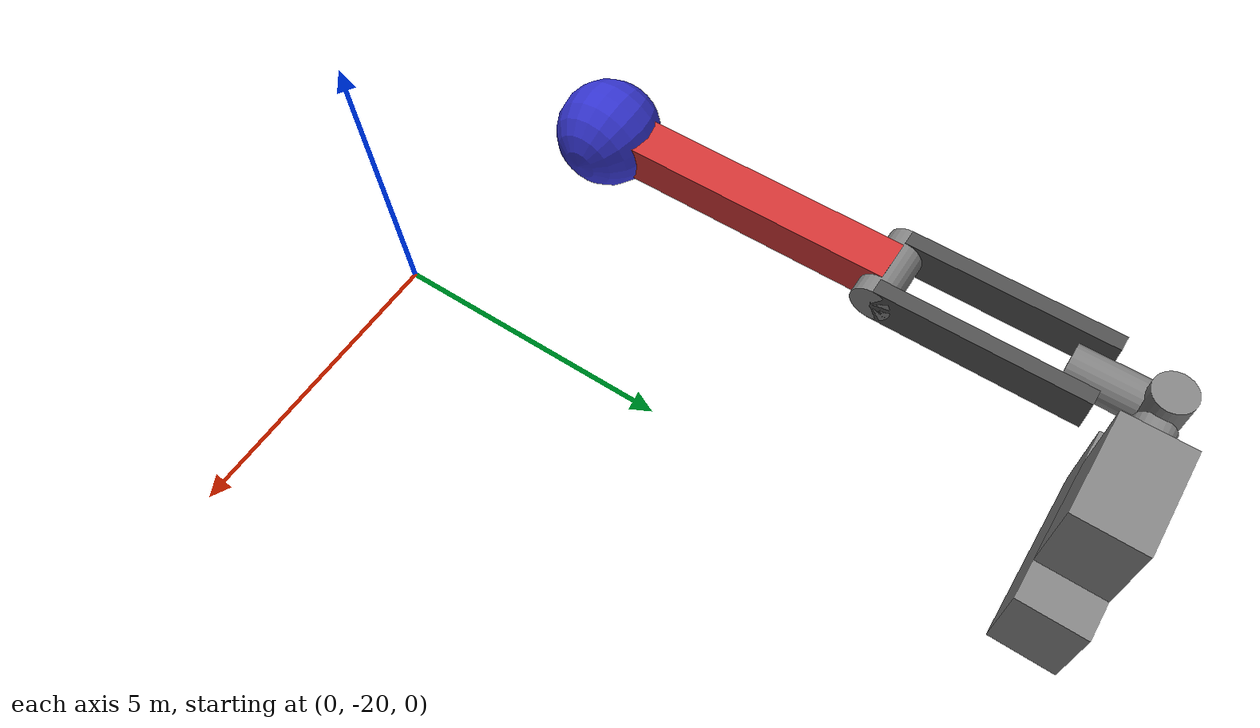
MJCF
<mujoco model="world_with_shapes">
    <compiler coordinate="local" angle="degree" inertiafromgeom="true"/>
    <size nuserdata="1000" nconmax="500" njmax="1000"/>
    <visual>
        <map fogstart="3" fogend="5" force="0.1" zfar="10"/>
        <quality shadowsize="2048"/>
    </visual>
    <asset>
        <!-- Define materials for visual appeal -->
        <material name="mat1" rgba="0.8 0.2 0.2 1"/>
        <material name="mat2" rgba="0.2 0.2 0.8 1"/>
        <material name="mat4" rgba="0.3 0.3 0.3 1"/>
        <material name="mat3" rgba="0.5 0.5 0.5 1"/>
        <material name="mat5" rgba="1.5 0.5 0.5 1"/>
    </asset>
    <worldbody>
        <body name="BOX" pos="-2.5 -8 0" euler="0 90 0">
            <geom type="box" size="1 0.65 1" material="mat3"/>
        </body>
        <body name="BO1X" pos="-2.5 -8 -2" euler="0 90 0">
            <geom type="box" size="1 0.65 1.75" material="mat3"/>
            <body name="cylinde11r" pos="-2 0 -1" euler="0 0 0">
                <geom type="cylinder" size="0.396 0.65" material="mat3"/>
                <inertial pos="0 0 0" mass="0.065"/>
                <joint/>
                <body name="cylinde121r" pos="0 0 -1" euler="0 90 0">
                    <geom type="cylinder" size="0.396 0.65" material="mat3"/>
                    <inertial pos="0 0 0" mass="0.065"/>
                    <joint/>
                     <body name="cylinde1r" pos="0 -1 0" euler="90 0 90">
                         <geom type="cylinder" size="0.396 0.65" material="mat3"/>
                         <inertial pos="0 0 0" mass="0.065"/>
                         <joint/>
                         <body name="rect_block1" pos="0 -0.6 2" euler="90 0 0">                <!-- Positioned at one end of the cylinder -->
                             <geom type="box" size="0.4 2 0.15" material="mat4"/>
                             <inertial pos="0 0 0" mass="0.02"/>
                         </body>
                         <body name="rect_block2" pos="0 0.6 2" euler="90 0 0">                <!-- Positioned at the other end of the cylinder -->
                             <geom type="box" size="0.4 2 0.15" material="mat4"/>
                             <inertial pos="0 0 0" mass="0.02"/>
                         </body>
                         <body name="cylinder" pos="0 0 4" euler="90 0 0">
                            <geom type="cylinder" size="0.396 0.75" material="mat3"/>
                             <inertial pos="0 0 0" mass="0.065"/>
                             <joint/>
                             <body name="rectangle" pos="0 3 0">
                                 <geom type="box" size="0.4 3 0.4" material="mat1"/>
                                 <body name="globe" pos="0 3 0">
                                     <geom type="sphere" size="1" material="mat2"/>
                                 </body>
                             </body>
                        </body>
                    </body>
                </body>
            </body>
        </body>
    </worldbody>
</mujoco>
